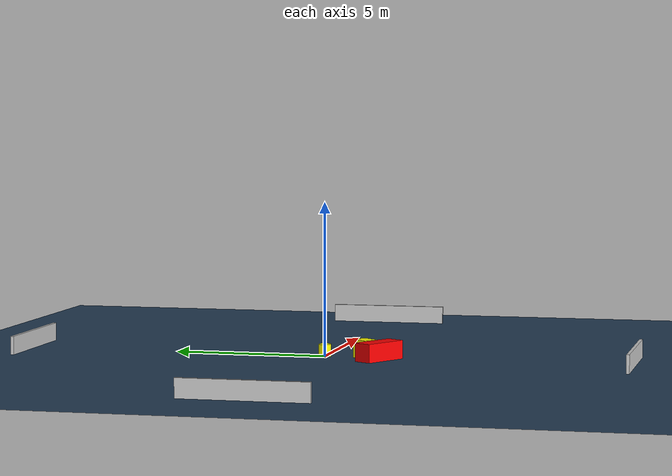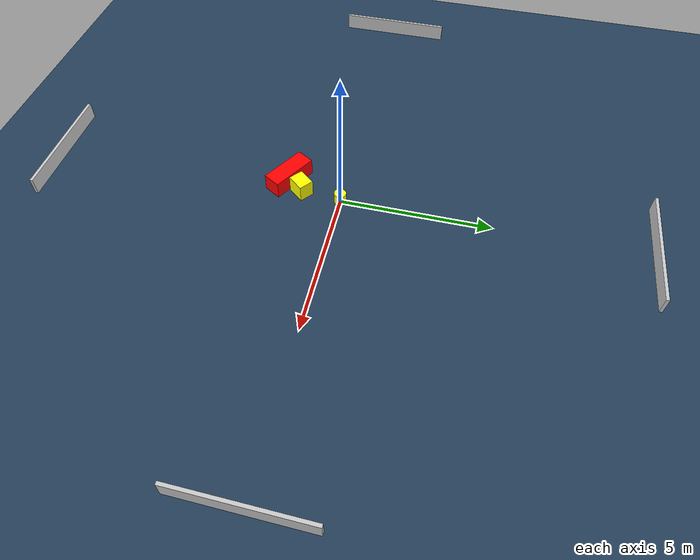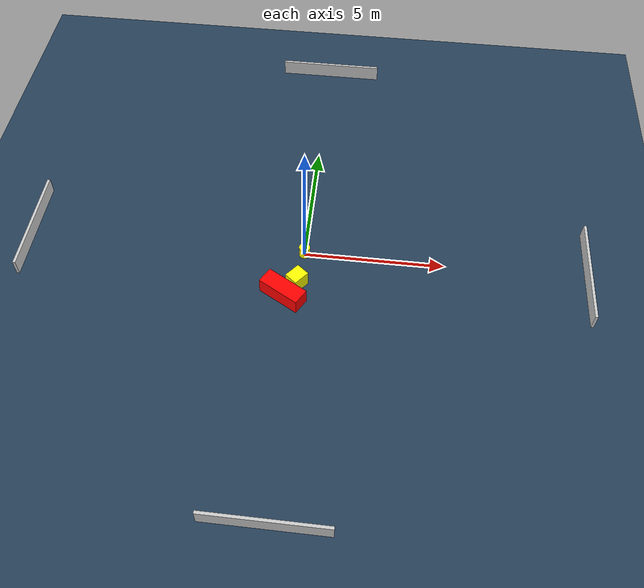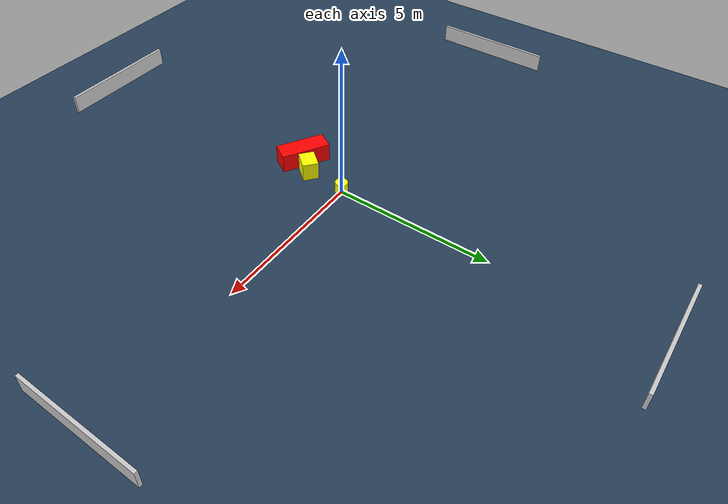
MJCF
<?xml version="1.0" ?>
<mujoco model="generated_environment">
  <option timestep="0.01" integrator="RK4" cone="elliptic"/>
  <default>
    <geom density="1"/>
  </default>
  <asset>
    <texture builtin="gradient" height="3072" name="skybox" rgb1="0.3 0.5 0.7" rgb2="0 0 0" type="skybox" width="512"/>
    <texture builtin="checker" height="300" name="groundplane" rgb1="0.2 0.3 0.4" rgb2="0.1 0.2 0.3" type="2d" width="300"/>
    <material name="groundplane" reflectance="0.2" texrepeat="5 5" texture="groundplane"/>
  </asset>
  <worldbody>
    <light dir="0 0 -1" directional="true" pos="0 0 1.5"/>
    <geom condim="3" friction="0.5 0.005 0.001" material="groundplane" name="floor" pos="0 0 0" size="0 0 0.05" type="plane"/>
    <body name="walls">
      <geom name="wall_1" condim="4" pos="-10.0 0.0 0.3" rgba="0.800000011920929 0.800000011920929 0.800000011920929 1.0" size="0.05 2.0 0.3" type="box"/>
      <geom name="wall_2" condim="4" pos="10.0 0.0 0.3" rgba="0.800000011920929 0.800000011920929 0.800000011920929 1.0" size="0.05 2.0 0.3" type="box"/>
      <geom name="wall_3" condim="4" pos="0.0 -10.0 0.3" rgba="0.800000011920929 0.800000011920929 0.800000011920929 1.0" size="2.0 0.05 0.3" type="box"/>
      <geom name="wall_4" condim="4" pos="0.0 10.0 0.3" rgba="0.800000011920929 0.800000011920929 0.800000011920929 1.0" size="2.0 0.05 0.3" type="box"/>
    </body>
    <body name="robot">
      <joint name="joint_x" type="slide" pos="0 0 0" axis="1 0 0"/>
      <joint name="joint_y" type="slide" pos="0 0 0" axis="0 1 0"/>
      <geom name="robot" type="cylinder" pos="0.0 0.0 0.2" size="0.2 0.2 0.0" mass="5.0" friction="1.0 0.005 0.0001" condim="4" rgba="1.0 1.0 0.0 1.0"/>
    </body>
    <body name="obstacle_1_movable">
      <geom name="obstacle_1_movable" condim="4" pos="-0.11426767115498357 -1.3575809473575888 0.3" euler="0 0 230.74124534486626" friction="0.0 0.005 0.001" rgba="1.0 1.0 0.0 1.0" size="0.30731501058813665 0.2511891591672538 0.3" type="box" mass="0.1"/>
      <joint type="free"/>
    </body>
    <body name="obstacle_2_static">
      <geom name="obstacle_2_static" condim="4" pos="-0.5362936788647479 -1.9056339403920324 0.3" euler="0 0 59.69587491678317" friction="0.0 0.005 0.001" rgba="1.0 0.0 0.0 1.0" size="0.3046090887828008 0.788998646115554 0.3" type="box"/>
    </body>
  </worldbody>
  <actuator>
    <motor name="actuator_x" joint="joint_x" gear="1" ctrlrange="-1 1"/>
    <motor name="actuator_y" joint="joint_y" gear="1" ctrlrange="-1 1"/>
  </actuator>
</mujoco>
